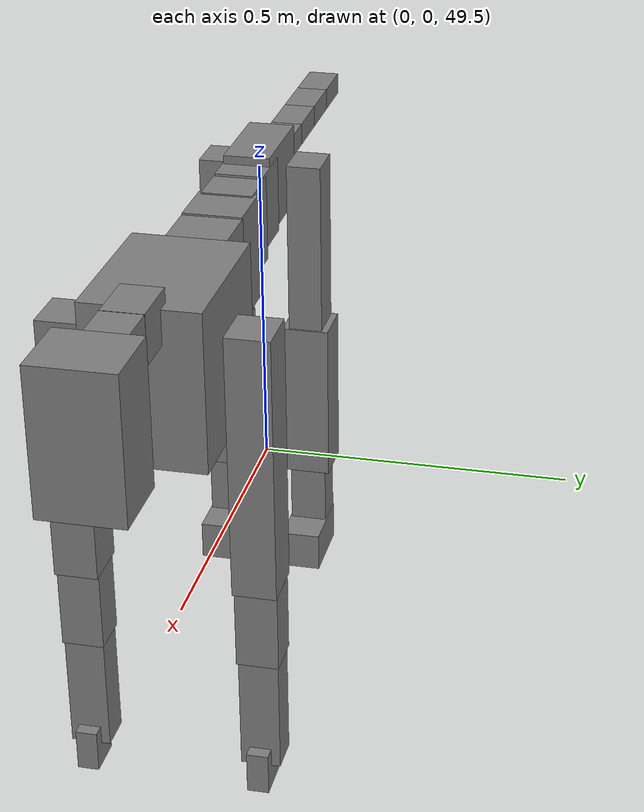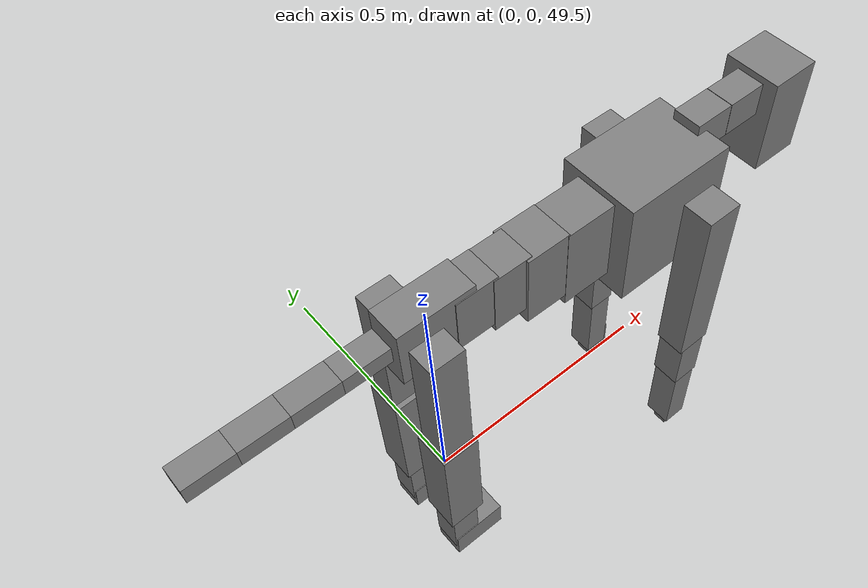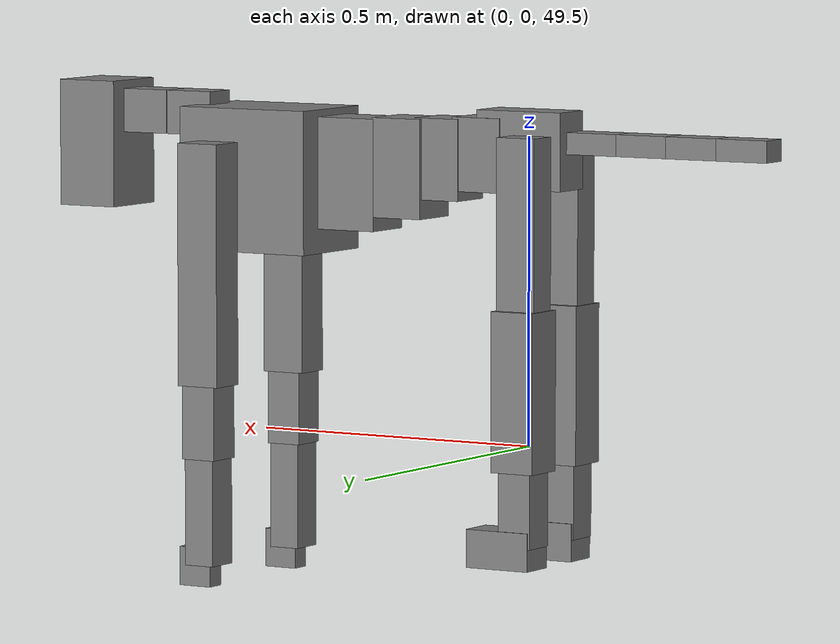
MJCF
<mujoco model="dog">

    <default>
        <joint armature="0.02" stiffness="1" damping="0.2" limited="true"/>
        <geom condim="3" friction="1 0.05 0.05" margin="0.01"/>
        <motor ctrllimited="true" ctrlrange="-1.0 1.0" forcelimited="true" gear="50"/>
    </default>

    <compiler inertiafromgeom="true" angle="radian"/>

    <option timestep="0.016" iterations="50" tolerance="1e-10" solver="Newton" jacobian="dense" cone="pyramidal"/>

    <size nconmax="20000" njmax="60000" nstack="5000000"/>
    <visual>
        <map force="0.1" zfar="30"/>
        <rgba haze="0.15 0.25 0.35 1"/>
        <quality shadowsize="2048"/>
        <global offwidth="800" offheight="800"/>
    </visual>

    <asset>
        <texture type="skybox" builtin="gradient" rgb1="0.3 0.5 0.7" rgb2="0 0 0" width="512" height="512"/>
        <texture name="texplane" type="2d" builtin="checker" rgb1=".2 .3 .4" rgb2=".1 0.15 0.2" width="512" height="512"
                 mark="cross" markrgb=".8 .8 .8"/>
        <texture name="texgeom" type="cube" builtin="flat" mark="cross" width="127" height="1278" rgb1="0.8 0.6 0.4"
                 rgb2="0.8 0.6 0.4" markrgb="1 1 1" random="0.01"/>

        <material name="matplane" reflectance="0.3" texture="texplane" texrepeat="1 1" texuniform="true"/>
        <material name="matgeom" texture="texgeom" texuniform="true" rgba="0.8 0.6 .4 1"/>
    </asset>

    <worldbody>
        <geom name="floor" pos="0 0 0" size="0 0 .25" type="plane" material="matplane" condim="3"/>

        <light directional="false" diffuse=".2 .2 .2" specular="0 0 0" pos="0 0 5" dir="0 0 -1" castshadow="false"/>
        <light mode="targetbodycom" target="torso" directional="false" diffuse=".8 .8 .8" specular="0.3 0.3 0.3"
               pos="0 0 4.0" dir="0 0 -1"/>

        <body name="root" pos="0 0 50">
            <freejoint name="root_1"/>
            <geom type="box" pos="0 0 -0.02" size="0.0774  0.0358  0.063" density="2030"/>

            <body name="spine1" pos="0.054 0 0">
                <joint name="spine1_y" axis="0 1 0" range="0 0.7" limited="true"/>
                <geom type="box" pos="0.02375 0 -0.03" size="0.04375  0.0375  0.05985" density="2030"/>

                <body name="spine2" pos="0.0612 0 0">
                    <joint name="spine2_y" axis="0 1 0" range="-0.15 0.15" limited="true"/>
                    <geom type="box" pos="0.03555  0  -0.04" size="0.04055  0.039  0.06615" density="2030"/>

                    <body name="spine3" pos="0.0730 0 0">
                        <joint name="spine3_y" axis="0 1 0" range="-0.15 0.15" limited="true"/>
                        <geom type="box" pos="0.03555  0  -0.057" size="0.04555  0.0445  0.081" density="2030"/>

                        <body name="spine4" pos="0.0780 0 0">
                            <joint name="spine4_y" axis="0 1 0" range="-0.15 0.15" limited="true"/>
                            <geom type="box" pos="0.05265  0  -0.07" size="0.05265  0.045  0.09135" density="2030"/>

                            <body name="torso" pos="0.1082 0 0">
                                <joint name="torso_y" axis="0 1 0" range="-0.15 0.15" limited="true"/>
                                <geom type="box" pos="0.11925  0  -0.085" size="0.11925  0.085  0.11745"
                                      density="2030"/>

                                <body name="neck1" pos="0.2160  0   0.0180">
                                    <joint name="neck1_y" axis="0 1 0" range="-1.2  -1" limited="true"/>
                                    <geom type="box" pos="0.0423  0  0" size="0.0423  0.03  0.036" density="2325"/>

                                    <body name="neck2" pos="0.0853  0  0">
                                        <joint name="neck2_y" axis="0 1 0" range="0.1  0" limited="true"/>
                                        <geom type="box" pos="0.0423  0  0" size="0.0423  0.03  0.036" density="2325"/>

                                        <body name="head" pos="0.0853  0  0">
                                            <joint name="head_y" axis="0 1 0" range="-0.3  -0.2" limited="true"/>
                                            <geom type="box" pos="0.0531  0  -0.055" size="0.0531  0.06  0.1044"
                                                  density="4030"/>

                                        </body>
                                    </body>
                                </body>

                                <body name="front_shoulder" pos="0.156  0   -0.0480">
                                    <joint name="front_shoulder_y" axis="0 1 0" range="-1 1.5" limited="true"/>
                                    <geom type="box" pos="0 0.13 -0.1717" size="0.0374  0.0320  0.1983" density="1158"/>
                                    <geom type="box" pos="0 -0.13 -0.1717" size="0.0374  0.0320  0.1983"
                                          density="1158"/>

                                    <body name="front_elbow" pos="0  0  -0.3434">
                                        <joint name="front_elbow_y" axis="0 1 0" range="-2 0" limited="true"/>
                                        <geom type="box" pos="0 0.13 -0.0734" size="0.0303  0.0310  0.0734"
                                              density="1081"/>
                                        <geom type="box" pos="0 -0.13 -0.0734" size="0.0303  0.0310  0.0734"
                                              density="1081"/>

                                        <body name="front_wrist" pos="0  0  -0.1468">
                                            <joint name="front_wrist_y" axis="0 1 0" range="-0.2 0" limited="true"/>
                                            <geom type="box" pos="0 0.13 -0.0805" size="0.0263  0.0293  0.0937"
                                                  density="1664"/>
                                            <geom type="box" pos="0 -0.13 -0.0805" size="0.0263  0.0293  0.0937"
                                                  density="1664"/>

                                            <body name="front_finger_end" pos="0  0  -0.1611">
                                                <joint name="front_finger_y" axis="0 1 0" range="-0.4 1"
                                                       limited="true"/>
                                                <geom type="box" pos="0.0161  0.13  -0.0169"
                                                      size="0.0294  0.0161  0.0319" density="1515"/>
                                                <geom type="box" pos="0.0161  -0.13  -0.0169"
                                                      size="0.0294  0.0161  0.0319" density="1515"/>

                                            </body>

                                        </body>
                                    </body>
                                </body>

                            </body>
                        </body>
                    </body>
                </body>
            </body>

            <body name="back_hip" pos="-0.03 0 -0.018">
                <joint name="back_hip_y" axis="0 1 0" range="-1.5 0.3" limited="true"/>
                <geom type="box" pos="0 0.07 -0.1349" size="0.0343  0.0269  0.1577" density="1154"/>
                <geom type="box" pos="0 -0.07 -0.1349" size="0.0343  0.0269  0.1577" density="1154"/>

                <body name="back_knee" pos="0  0  -0.2697">
                    <joint name="back_knee_y" axis="0 1 0" range="0 2.8" limited="true"/>
                    <geom type="box" pos="0 0.07 -0.1136" size="0.0378  0.0373  0.1292" density="1227"/>
                    <geom type="box" pos="0 -0.07 -0.1136" size="0.0378  0.0373  0.1292" density="1227"/>

                    <body name="back_ankle" pos="0  0  -0.2272">
                        <joint name="back_ankle_y" axis="0 1 0" range="-2.2 0" limited="true"/>
                        <geom type="box" pos="0 0.07 -0.0628" size="0.0289  0.0289  0.0740" density="1284"/>
                        <geom type="box" pos="0 -0.07 -0.0628" size="0.0289  0.0289  0.0740" density="1284"/>

                        <body name="back_toe_end" pos="0  0  -0.1255">
                            <joint name="back_toe_y" axis="0 1 0" range="-0.4 1" limited="true"/>
                            <geom type="box" pos="0.0308  0.07  -0.0159" size="0.0565  0.0308  0.0309" density="1515"/>
                            <geom type="box" pos="0.0308  -0.07  -0.0159" size="0.0565  0.0308  0.0309" density="1515"/>

                        </body>
                    </body>
                </body>
            </body>

            <body name="tail1" pos="-0.074 0 -0.006">
                <joint name="tail1_y" axis="0 1 0" range="-0.2 0.2" limited="true"/>
                <geom type="box" pos="-0.0536  0  0" size="0.045  0.025  0.0175" density="1587"/>

                <body name="tail2" pos="-0.09 0 0">
                    <joint name="tail2_y" axis="0 1 0" range="-0.2 0.2" limited="true"/>
                    <geom type="box" pos="-0.0536  0  0" size="0.045  0.025  0.0175" density="1587"/>

                    <body name="tail3" pos="-0.09 0 0">
                        <joint name="tail3_y" axis="0 1 0" range="-0.2 0.2" limited="true"/>
                        <geom type="box" pos="-0.0536  0  0" size="0.045  0.025  0.0175" density="1587"/>

                        <body name="tail4" pos="-0.09 0 0">
                            <joint name="tail4_y" axis="0 1 0" range="-0.2 0.2" limited="true"/>
                            <geom type="box" pos="-0.0536  0  0" size="0.045  0.025  0.0175" density="1587"/>

                        </body>
                    </body>
                </body>
            </body>
        </body>
    </worldbody>

    <actuator>
        <motor joint="spine1_y" forcerange="-150 150     "/>
        <motor joint="spine2_y" forcerange="-150 150     "/>
        <motor joint="spine3_y" forcerange="-150 150     "/>
        <motor joint="spine4_y" forcerange="-150 150     "/>
        <motor joint="torso_y" forcerange="-150 150     "/>
        <motor joint="neck1_y" forcerange="-100 100       "/>
        <motor joint="neck2_y" forcerange="-100 100       "/>
        <motor joint="head_y" forcerange="-150 150       "/>
        <motor joint="front_shoulder_y" forcerange="-163.20 150.05"/>
        <motor joint="front_elbow_y" forcerange="-178.95 146.39"/>
        <motor joint="front_wrist_y" forcerange="-138.48 95.67"/>
        <motor joint="front_finger_y" forcerange="-22.68 22.93"/>
        <motor joint="back_hip_y" forcerange="-322.30 236.26"/>
        <motor joint="back_knee_y" forcerange="-370.74 371.52"/>
        <motor joint="back_angle_y" forcerange="-116.62 246.05"/>
        <motor joint="back_toe_y" forcerange="-94.91 71.75"/>
        <motor joint="tail1_y" forcerange="-50 50     "/>
        <motor joint="tail2_y" forcerange="-50 50     "/>
        <motor joint="tail3_y" forcerange="-50 50     "/>
        <motor joint="tail4_y" forcerange="-50 50     "/>
    </actuator>
</mujoco>
